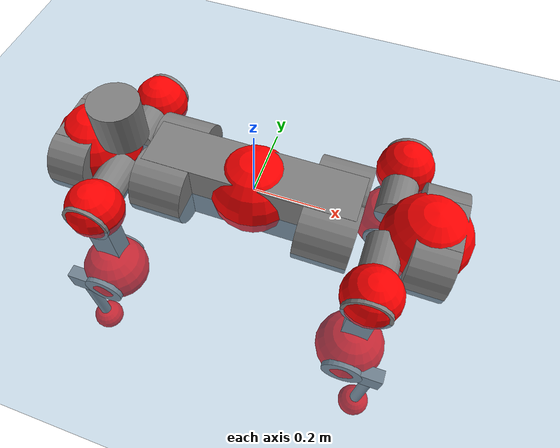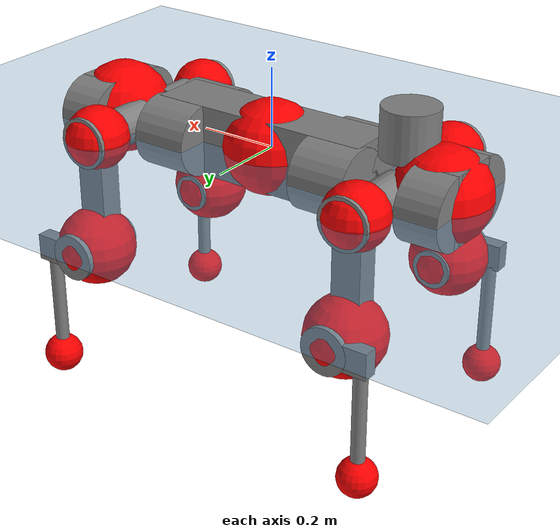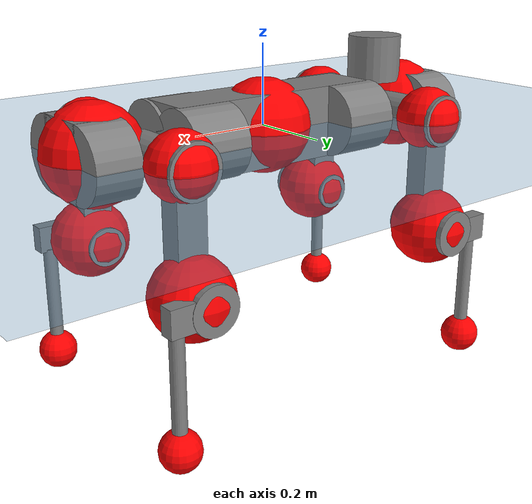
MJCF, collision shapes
<mujoco model="anymal_c">
  <compiler angle="radian" assetdir="assets" balanceinertia="true" inertiafromgeom="false"/>

  <option timestep="0.005" density="1.2" viscosity="2e-05"/>

  <size nkey="1"/>

  <visual>
    <quality shadowsize="8192"/>
    <map shadowclip="0.5"/>
  </visual>

  <default>
    <default class="/">
      <material specular="0" shininess="0.25"/>
      <geom contype="0" conaffinity="0" group="1" solref="-1000 -80"/>
      <site size="0.01 0.005 0.005" group="5"/>
      <general forcelimited="true" forcerange="-80 80" biastype="affine" gainprm="80" biasprm="0 -80 -2"/>
      <default class="anymal_c">
        <joint armature="0.01" damping="0.01" frictionloss="0.1"/>
        <default class="visual">
          <geom type="mesh" group="2"/>
          <default class="visual_zflip"/>
        </default>
        <default class="collision">
          <geom type="cylinder" group="3"/>
          <default class="foot">
            <geom size="0.03 0 0" type="sphere" condim="6" priority="1" friction="0.8 0.02 0.01" solimp="0.015 1 0.03"/>
          </default>
        </default>
      </default>
      <default class="reward_collision_sphere">
        <geom group="5" rgba="1 0 0 1"/>
      </default>
    </default>
  </default>

  <asset>
    <texture type="skybox" colorspace="auto" name="//unnamed_texture_0" builtin="gradient" rgb1="0.95 0.95 0.95" rgb2="0.95 0.95 0.95" width="100" height="600"/>
    <texture type="2d" colorspace="auto" name="texplane" builtin="checker" rgb1="0.345 0.575 0.748" rgb2="0.345 0.575 0.748" markrgb="1 1 1" width="512" height="512"/>
    <texture type="2d" colorspace="linear" name="base" file="base.png"/>
    <texture type="2d" colorspace="linear" name="top_shell" file="top_shell.png"/>
    <texture type="2d" colorspace="linear" name="bottom_shell" file="bottom_shell.png"/>
    <texture type="2d" colorspace="linear" name="remote" file="remote.png"/>
    <texture type="2d" colorspace="linear" name="hatch" file="hatch.png"/>
    <texture type="2d" colorspace="linear" name="handle" file="handle.png"/>
    <texture type="2d" colorspace="linear" name="face" file="face.png"/>
    <texture type="2d" colorspace="linear" name="battery" file="battery.png"/>
    <texture type="2d" colorspace="linear" name="lidar_cage" file="lidar_cage.png"/>
    <texture type="2d" colorspace="linear" name="depth_camera" file="depth_camera.png"/>
    <texture type="2d" colorspace="linear" name="wide_angle_camera" file="wide_angle_camera.png"/>
    <texture type="2d" colorspace="linear" name="lidar" file="lidar.png"/>
    <texture type="2d" colorspace="linear" name="drive" file="drive.png"/>
    <texture type="2d" colorspace="linear" name="hip_l" file="hip_l.png"/>
    <texture type="2d" colorspace="linear" name="shank_l" file="shank_l.png"/>
    <texture type="2d" colorspace="linear" name="foot" file="foot.png"/>
    <texture type="2d" colorspace="linear" name="thigh" file="thigh.png"/>
    <texture type="2d" colorspace="linear" name="shank_r" file="shank_r.png"/>
    <texture type="2d" colorspace="linear" name="hip_r" file="hip_r.png"/>
    <material name="MatPlane" class="/" texture="texplane" texuniform="true" texrepeat="2 2" specular="0.9" shininess="0.5"/>
    <material name="black_plastic" class="/" rgba="0.007 0.007 0.007 1"/>
    <material name="green" class="/" rgba="0.052 0.178 0.033 1"/>
    <material name="red" class="/" rgba="0.178 0.006 0.005 1"/>
    <material name="yellow" class="/" rgba="0.178 0.119 0.006 1"/>
    <material name="lwl" class="/" rgba="0.8 0.8 0.8 1"/>
    <material name="base" class="/" texture="base"/>
    <material name="top_shell" class="/" texture="top_shell"/>
    <material name="bottom_shell" class="/" texture="bottom_shell"/>
    <material name="hip_l" class="/" texture="hip_l"/>
    <material name="thigh" class="/" texture="thigh"/>
    <material name="shank_l" class="/" texture="shank_l"/>
    <material name="foot" class="/" texture="foot"/>
    <material name="hip_r" class="/" texture="hip_r"/>
    <material name="shank" class="/" texture="shank_r"/>
    <material name="hatch" class="/" texture="hatch"/>
    <material name="remote" class="/" texture="remote"/>
    <material name="handle" class="/" texture="handle"/>
    <material name="face" class="/" texture="face"/>
    <material name="depth_camera" class="/" texture="depth_camera"/>
    <material name="wide_angle_camera" class="/" texture="wide_angle_camera"/>
    <material name="battery" class="/" texture="battery"/>
    <material name="lidar_cage" class="/" texture="lidar_cage"/>
    <material name="lidar" class="/" texture="lidar"/>
    <material name="drive" class="/" texture="drive"/>
    <mesh name="base_0" class="/" file="base_0.obj"/>
    <mesh name="base_1" class="/" file="base_1.obj"/>
    <mesh name="base_2" class="/" file="base_2.obj"/>
    <mesh name="base_3" class="/" file="base_3.obj"/>
    <mesh name="base_4" class="/" file="base_4.obj"/>
    <mesh name="base_5" class="/" file="base_5.obj"/>
    <mesh name="top_shell" class="/" file="top_shell.obj"/>
    <mesh name="bottom_shell" class="/" file="bottom_shell.obj"/>
    <mesh name="remote" class="/" file="remote.obj"/>
    <mesh name="handle" class="/" file="handle.obj"/>
    <mesh name="face" class="/" file="face.obj"/>
    <mesh name="wide_angle_camera" class="/" file="wide_angle_camera.obj"/>
    <mesh name="depth_camera" class="/" file="depth_camera.obj"/>
    <mesh name="battery" class="/" file="battery.obj"/>
    <mesh name="lidar_cage" class="/" file="lidar_cage.obj"/>
    <mesh name="lidar" class="/" file="lidar.obj"/>
    <mesh name="drive" class="/" file="drive.obj"/>
    <mesh name="hip_l" class="/" file="hip_l.obj"/>
    <mesh name="thigh" class="/" file="thigh.obj"/>
    <mesh name="shank_l" class="/" file="shank_l.obj"/>
    <mesh name="foot" class="/" file="foot.obj"/>
    <mesh name="hip_r" class="/" file="hip_r.obj"/>
    <mesh name="hatch" class="/" file="hatch.obj"/>
    <mesh name="shank_r" class="/" file="shank_r.obj"/>
  </asset>

  <worldbody>
    <geom name="floor" class="/" size="100 100 0.125" type="plane" group="0" material="MatPlane"/>
    <light name="toplight_shadow" class="/" pos="0 0 5" dir="0.0990148 0.0990148 -0.990148" type="directional" ambient="0.04 0.04 0.04" diffuse="0.55 0.55 0.55" specular="0.12 0.12 0.12"/>
    <light name="toplight_fill" class="/" pos="0 0 5" dir="0.0990148 0.0990148 -0.990148" type="directional" castshadow="false" ambient="0.04 0.04 0.04" diffuse="0.3 0.3 0.3" specular="0.08 0.08 0.08"/>
    <body name="trunk" childclass="anymal_c" pos="7.33938e-05 4.87483e-05 0.000836082" quat="1 -3.62262e-07 1.35097e-06 1.83931e-06">
      <inertial pos="0.00216746 0.000140832 0.0478102" quat="0.499817 0.500188 0.50003 0.499964" mass="18.6758" diaginertia="0.757434 0.464583 0.207195"/>
      <joint name="//unnamed_joint_0" type="free" armature="0" damping="0" frictionloss="0"/>
      <geom name="//unnamed_geom_1" class="visual" material="green" mesh="base_0"/>
      <geom name="//unnamed_geom_2" class="visual" material="yellow" mesh="base_1"/>
      <geom name="//unnamed_geom_3" class="visual" material="red" mesh="base_2"/>
      <geom name="//unnamed_geom_4" class="visual" material="black_plastic" mesh="base_3"/>
      <geom name="//unnamed_geom_5" class="visual" material="lwl" mesh="base_4"/>
      <geom name="//unnamed_geom_6" class="visual" material="base" mesh="base_5"/>
      <geom name="trunk_1" class="collision" size="0.286496 0.0691541 0.0889125" type="box"/>
      <geom name="trunk_2" class="collision" size="0.0889125 0.0716239" pos="0.224767 0.0659329 0" quat="0.707107 0 0.707107 0"/>
      <geom name="trunk_3" class="collision" size="0.0889125 0.0716239" pos="-0.224767 0.0659329 0" quat="0.707107 0 0.707107 0"/>
      <geom name="trunk_4" class="collision" size="0.0889125 0.0716239" pos="0.224767 -0.0659329 0" quat="0.707107 0 0.707107 0"/>
      <geom name="trunk_5" class="collision" size="0.0889125 0.0716239" pos="-0.224767 -0.0659329 0" quat="0.707107 0 0.707107 0"/>
      <geom name="//unnamed_geom_12" class="visual" material="top_shell" mesh="top_shell"/>
      <geom name="//unnamed_geom_13" class="visual" material="bottom_shell" mesh="bottom_shell"/>
      <geom name="//unnamed_geom_14" class="visual" material="remote" mesh="remote"/>
      <geom name="//unnamed_geom_15" class="visual" material="handle" mesh="handle"/>
      <geom name="//unnamed_geom_16" class="visual" pos="0.42835 0 0" quat="1 0 0 0" material="face" mesh="face"/>
      <geom name="trunk_6" class="collision" size="0.0543354 0.0691541 0.0889125" pos="0.485188 0 0" type="box"/>
      <geom name="//unnamed_geom_18" class="collision" size="0.0889125 0.0543354" pos="0.485188 0.0659329 0" quat="0.707107 0 0.707107 0"/>
      <geom name="//unnamed_geom_19" class="collision" size="0.0889125 0.0543354" pos="0.485188 -0.0659329 0" quat="0.707107 0 0.707107 0"/>
      <geom name="//unnamed_geom_20" class="visual" pos="0.477073 0 -0.0285205" quat="0.965926 0 0.258819 0" material="depth_camera" mesh="depth_camera"/>
      <geom name="//unnamed_geom_21" class="visual" pos="0.530141 0 0.0147969" material="wide_angle_camera" mesh="wide_angle_camera"/>
      <geom name="//unnamed_geom_22" class="visual_zflip" pos="-0.42835 0 0" quat="0 0 0 1" material="face" mesh="face"/>
      <geom name="trunk_7" class="collision" size="0.0543354 0.0691541 0.0889125" pos="-0.485188 0 0" quat="0 0 0 1" type="box"/>
      <geom name="//unnamed_geom_24" class="collision" size="0.0889125 0.0543354" pos="-0.485188 -0.0659329 0" quat="0 -0.707107 0 0.707107"/>
      <geom name="//unnamed_geom_25" class="collision" size="0.0889125 0.0543354" pos="-0.485188 0.0659329 0" quat="0 -0.707107 0 0.707107"/>
      <geom name="//unnamed_geom_26" class="visual" pos="-0.477073 0 -0.0285205" quat="0 -0.258819 0 0.965926" material="depth_camera" mesh="depth_camera"/>
      <geom name="//unnamed_geom_27" class="visual_zflip" pos="-0.530141 0 0.0147969" quat="0 0 0 1" material="wide_angle_camera" mesh="wide_angle_camera"/>
      <geom name="//unnamed_geom_28" class="visual" material="battery" mesh="battery"/>
      <geom name="//unnamed_geom_29" class="visual" pos="0 0.0708149 0.0290559" quat="0.683013 -0.183013 0.183013 0.683013" material="depth_camera" mesh="depth_camera"/>
      <geom name="//unnamed_geom_30" class="visual" pos="0 -0.0708149 0.0290559" quat="0.683013 0.183013 0.183013 -0.683013" material="depth_camera" mesh="depth_camera"/>
      <geom name="//unnamed_geom_31" class="visual" pos="-0.376163 0 0.0726501" quat="1 0 0 0" material="lidar_cage" mesh="lidar_cage"/>
      <geom name="trunk_8" class="collision" size="0.0691541 0.059275" pos="-0.376163 0 0.131956"/>
      <geom name="//unnamed_geom_33" class="visual" pos="-0.376162 -3.59535e-05 0.140556" quat="0.707107 0 0 -0.707107" material="lidar" mesh="lidar"/>
      <geom name="//unnamed_geom_34" class="visual" pos="0.309921 0.097974 -8.02769e-10" quat="0.258819 0.965926 0 0" material="drive" mesh="drive"/>
      <geom name="//unnamed_geom_35" class="visual" pos="0.309921 -0.097974 8.02769e-10" quat="0.258819 -0.965926 0 0" material="drive" mesh="drive"/>
      <geom name="//unnamed_geom_36" class="visual" pos="-0.309921 0.097974 8.02769e-10" quat="0 0 0.965926 -0.258819" material="drive" mesh="drive"/>
      <geom name="//unnamed_geom_37" class="visual" pos="-0.309921 -0.097974 -8.02769e-10" quat="0 0 -0.965926 -0.258819" material="drive" mesh="drive"/>
      <geom name="//unnamed_geom_38" class="visual" pos="0.119876 0 0.0721558" quat="1 0 0 0" material="hatch" mesh="hatch"/>
      <geom name="//unnamed_geom_39" class="reward_collision_sphere" size="0.11855"/>
      <geom name="//unnamed_geom_40" class="reward_collision_sphere" size="0.11855" pos="0.465036 0 0"/>
      <geom name="//unnamed_geom_41" class="reward_collision_sphere" size="0.11855" pos="-0.465036 0 0"/>
      <site name="imu" pos="0.257431 0.0118698 0.0452923" size="0.00987916"/>
      <camera name="track" pos="0 -1.8838 0" quat="0.707107 0.707107 0 0" mode="trackcom"/>
      <camera name="ego_camera" pos="0.465036 0 -0.0395374" quat="-0.5 -0.5 0.5 0.5"/>
      <body name="LF_HIP" pos="0.310141 0.0986051 7.42327e-05" quat="0.258882 0.965909 7.11476e-06 -0.0001366">
        <inertial pos="0.0589252 -0.0142493 -0.00733944" quat="-0.128048 0.709631 -0.134428 0.679674" mass="2.65556" diaginertia="0.00687257 0.00366566 0.00305942"/>
        <joint name="LF_HAA" pos="0 0 0" axis="0.999999 0.00103961 0.000967852" stiffness="0.00024286" range="-0.712077 0.491932" armature="0.00946986" damping="0.00648951" frictionloss="0.100928"/>
        <geom name="//unnamed_geom_42" class="visual" pos="0 -4.72233e-05 7.75639e-06" quat="0.258819 -0.965926 0 0" material="hip_l" mesh="hip_l"/>
        <geom name="//unnamed_geom_43" class="visual" pos="0.0619015 -0.0738184 -0.0429633" quat="0.183013 -0.683013 0.683013 0.183013" material="drive" mesh="drive"/>
        <geom name="//unnamed_geom_44" class="collision" size="0.0493958 0.0691541" pos="0.0619015 -0.0112649 -0.00682515" quat="-0.353553 -0.612372 0.612372 -0.353553"/>
        <body name="LF_THIGH" pos="0.0622563 -0.0686884 -0.041866" quat="0.183075 -0.683003 0.682999 0.183036">
          <inertial pos="0.0319364 0.000167604 -0.242004" quat="0.993232 -0.00458361 -0.0802534 0.0838397" mass="2.98236" diaginertia="0.0357896 0.0220132 0.0039255"/>
          <joint name="LF_HFE" pos="0 0 0" axis="1 -0.000165217 0.000332652" stiffness="0.00656538" range="-3.12596 3.1305" armature="0.0101121" damping="0.0079015" frictionloss="0.097917"/>
          <geom name="//unnamed_geom_45" class="visual" pos="0.00182078 2.86912e-06 0" quat="0.707107 0 0 -0.707107" material="thigh" mesh="thigh"/>
          <geom name="//unnamed_geom_46" class="collision" size="0.0642146 0.0395166" pos="0.0413365 0 0" quat="0.5 0.5 -0.5 -0.5"/>
          <geom name="//unnamed_geom_47" class="collision" size="0.0370469 0.0296375 0.139606" pos="0.0310024 0 -0.13968" quat="0.707107 0 0 -0.707107" type="box"/>
          <geom name="//unnamed_geom_48" class="visual" pos="0.103651 0 -0.281704" quat="1 0 0 0" material="drive" mesh="drive"/>
          <geom name="//unnamed_geom_49" class="collision" size="0.0493958 0.0691541" pos="0.0313124 0 -0.281704" quat="0.707107 0 0.707107 0"/>
          <geom name="//unnamed_geom_50" class="reward_collision_sphere" size="0.0790333" pos="0.0258353 0 0"/>
          <body name="LF_SHANK" pos="0.103541 -0.00117514 -0.282662" quat="1 -3.95406e-05 -0.000110311 7.9899e-06">
            <inertial pos="0.00592461 -0.0576197 -0.0797167" quat="0.992947 -0.115869 -0.000996721 -0.0251004" mass="0.572988" diaginertia="0.0119859 0.00686647 0.00106194"/>
            <joint name="LF_KFE" pos="0 0 0" axis="0.999988 -0.00173907 -0.00453701" range="-3.13971 3.13166" armature="0.0099386" damping="0.00642733" frictionloss="0.102878"/>
            <geom name="//unnamed_geom_51" class="visual" pos="0.000593715 0.00316572 0" quat="0.707107 0 0 -0.707107" material="shank_l" mesh="shank_l"/>
            <geom name="LF_kfe_act" class="collision" size="0.059275 0.0197583" pos="0.0206683 0 0" quat="0.5 0.5 -0.5 -0.5"/>
            <geom name="//unnamed_geom_53" class="collision" size="0.0568042 0.0333422 0.0187704" pos="0.0206683 -0.0541583 0" quat="0.5 0.5 -0.5 -0.5" type="box"/>
            <geom name="//unnamed_geom_54" class="visual" pos="0.0134859 -0.0818198 -0.334062" quat="0.382683 0 0 -0.92388" material="foot" mesh="foot"/>
            <geom name="LF_calf" class="collision" size="0.0172885 0.139545" pos="0.013486 -0.08284 -0.167031" quat="0.707107 0 0 -0.707107"/>
            <geom name="LF_foot" class="foot" size="0.0305126" pos="0.013486 -0.08284 -0.311822" quat="0.707107 0 0 -0.707107"/>
            <geom name="//unnamed_geom_57" class="reward_collision_sphere" size="0.0987916" pos="-0.0516707 0 0"/>
            <geom name="//unnamed_geom_58" class="reward_collision_sphere" size="0.0493958" pos="0.013486 -0.08284 -0.311822"/>
            <site name="LF_foot" class="foot" pos="0.013486 -0.08284 -0.311822" quat="0.707107 0 0 -0.707107" size="0.00987916"/>
          </body>
        </body>
      </body>
      <body name="RF_HIP" pos="0.310308 -0.0976614 0.000717893" quat="0.258514 -0.966008 -0.000170803 -0.000113216">
        <inertial pos="0.0587739 0.0151248 -0.00866331" quat="0.135404 0.679055 0.12787 0.710071" mass="2.69341" diaginertia="0.00693927 0.00368097 0.003106"/>
        <joint name="RF_HAA" pos="0 0 0" axis="1 -0.000460431 0.000611719" range="-0.506583 0.720917" armature="0.00979972" damping="0.0119585" frictionloss="0.103239"/>
        <geom name="//unnamed_geom_59" class="visual" pos="0 4.72229e-05 7.75637e-06" quat="0.258819 0.965926 0 0" material="hip_r" mesh="hip_r"/>
        <geom name="//unnamed_geom_60" class="visual" pos="0.0619015 0.0738184 -0.0429633" quat="0.183013 0.683013 0.683013 -0.183013" material="drive" mesh="drive"/>
        <geom name="//unnamed_geom_61" class="collision" size="0.0493958 0.0691541" pos="0.0619015 0.0112649 -0.00682515" quat="-0.353553 0.612372 0.612372 0.353553"/>
        <body name="RF_THIGH" pos="0.0629076 0.0676581 -0.041865" quat="0.183046 0.682992 0.683028 -0.183001">
          <inertial pos="0.0319654 -0.000203159 -0.242632" quat="0.992741 -0.00463469 -0.0810025 0.088785" mass="3.01214" diaginertia="0.0359316 0.0224699 0.00400598"/>
          <joint name="RF_HFE" pos="0 0 0" axis="0.999997 -0.000317599 -0.00229276" stiffness="0.00585023" range="-3.12675 3.13752" armature="0.00996094" damping="0.0103337" frictionloss="0.096365"/>
          <geom name="//unnamed_geom_62" class="visual" pos="0.00182078 2.86912e-06 0" quat="0.707107 0 0 -0.707107" material="thigh" mesh="thigh"/>
          <geom name="//unnamed_geom_63" class="collision" size="0.0642146 0.0395166" pos="0.0413365 0 0" quat="0.5 0.5 0.5 0.5"/>
          <geom name="//unnamed_geom_64" class="collision" size="0.0370469 0.0296375 0.139606" pos="0.0310024 0 -0.13968" quat="0.707107 0 0 0.707107" type="box"/>
          <geom name="//unnamed_geom_65" class="visual" pos="0.103651 0 -0.281704" quat="1 0 0 0" material="drive" mesh="drive"/>
          <geom name="//unnamed_geom_66" class="collision" size="0.0493958 0.0691541" pos="0.0313124 0 -0.281704" quat="0.707107 0 0.707107 0"/>
          <geom name="//unnamed_geom_67" class="reward_collision_sphere" size="0.0790333" pos="0.0258353 0 0"/>
          <body name="RF_SHANK" pos="0.103458 0.000594095 -0.281983" quat="1 0.000145945 8.3103e-05 3.08329e-05">
            <inertial pos="0.00587324 0.0572379 -0.0789374" quat="0.993012 0.115564 -0.00154992 0.0238586" mass="0.559726" diaginertia="0.0118274 0.00682945 0.00105273"/>
            <joint name="RF_KFE" pos="0 0 0" axis="0.999973 0.00729535 -0.001299" stiffness="0.00129302" range="-3.13104 3.14523" armature="0.00997881" damping="0.00917905" frictionloss="0.0948109"/>
            <geom name="//unnamed_geom_68" class="visual" pos="0.000593712 -0.00316572 0" quat="0.707107 0 0 0.707107" material="shank" mesh="shank_r"/>
            <geom name="RF_kfe_act" class="collision" size="0.059275 0.0197583" pos="0.0206683 0 0" quat="0.5 0.5 0.5 0.5"/>
            <geom name="//unnamed_geom_70" class="collision" size="0.0568042 0.0333422 0.0187704" pos="0.0206683 0.0541583 0" quat="0.5 0.5 0.5 0.5" type="box"/>
            <geom name="//unnamed_geom_71" class="visual" pos="0.0134862 0.0818198 -0.334062" quat="0.382683 0 0 0.92388" material="foot" mesh="foot"/>
            <geom name="RF_calf" class="collision" size="0.0172885 0.139545" pos="0.013486 0.08284 -0.167031" quat="0.707107 0 0 0.707107"/>
            <geom name="RF_foot" class="foot" size="0.030018" pos="0.013486 0.08284 -0.311822" quat="0.707107 0 0 0.707107"/>
            <geom name="//unnamed_geom_74" class="reward_collision_sphere" size="0.0987916" pos="-0.0516707 0 0"/>
            <geom name="//unnamed_geom_75" class="reward_collision_sphere" size="0.0493958" pos="0.013486 0.08284 -0.311822"/>
            <site name="RF_foot" class="foot" pos="0.013486 0.08284 -0.311822" quat="0.707107 0 0 0.707107" size="0.00987916"/>
          </body>
        </body>
      </body>
      <body name="LH_HIP" pos="-0.309897 0.0979232 0.000153298" quat="-6.23564e-05 -0.000111635 0.965923 -0.25883">
        <inertial pos="0.0593199 0.0145191 -0.00794618" quat="0.1313 0.68072 0.125221 0.709718" mass="2.64904" diaginertia="0.00691075 0.00360498 0.00312037"/>
        <joint name="LH_HAA" pos="0 0 0" axis="0.999985 -0.00154654 0.00530851" range="-0.483808 0.73338" armature="0.00992597" damping="0.0134223" frictionloss="0.0952967"/>
        <geom name="//unnamed_geom_76" class="visual" pos="0 4.72229e-05 7.75637e-06" quat="-0.258819 -0.965926 0 0" material="hip_r" mesh="hip_r"/>
        <geom name="//unnamed_geom_77" class="visual" pos="0.0619015 0.0738184 -0.0429633" quat="0.183013 0.683013 0.683013 -0.183013" material="drive" mesh="drive"/>
        <geom name="//unnamed_geom_78" class="collision" size="0.0493958 0.0691541" pos="0.0619015 0.0112649 -0.00682515" quat="-0.353553 0.612372 0.612372 0.353553"/>
        <body name="LH_THIGH" pos="0.0612584 0.0692915 -0.0418997" quat="0.182943 0.682875 0.683108 -0.183237">
          <inertial pos="0.0317834 0.000758629 -0.242599" quat="0.992748 -0.00564353 -0.0803254 0.0892603" mass="2.98556" diaginertia="0.0355354 0.0224231 0.00392336"/>
          <joint name="LH_HFE" pos="0 0 0" axis="1 -5.68533e-06 -0.000307776" range="-3.14302 3.13735" armature="0.00993362" damping="0.00615558" frictionloss="0.0987622"/>
          <geom name="//unnamed_geom_79" class="visual" pos="0.00182078 2.86912e-06 0" quat="0.707107 0 0 -0.707107" material="thigh" mesh="thigh"/>
          <geom name="//unnamed_geom_80" class="collision" size="0.0642146 0.0395166" pos="0.0413365 0 0" quat="0.5 0.5 -0.5 -0.5"/>
          <geom name="//unnamed_geom_81" class="collision" size="0.0370469 0.0296375 0.139606" pos="0.0310024 0 -0.13968" quat="0.707107 0 0 -0.707107" type="box"/>
          <geom name="//unnamed_geom_82" class="visual" pos="0.103651 0 -0.281704" quat="1 0 0 0" material="drive" mesh="drive"/>
          <geom name="//unnamed_geom_83" class="collision" size="0.0493958 0.0691541" pos="0.0313124 0 -0.281704" quat="0.707107 0 0.707107 0"/>
          <geom name="//unnamed_geom_84" class="reward_collision_sphere" size="0.0790333" pos="0.0258353 0 0"/>
          <body name="LH_SHANK" pos="0.10343 -0.000389159 -0.282048" quat="1 9.90371e-05 0.000286893 -0.000261879">
            <inertial pos="0.0049794 0.0575746 -0.0788013" quat="0.99295 0.11579 -0.000891301 0.0253551" mass="0.57572" diaginertia="0.0120953 0.00693691 0.00108279"/>
            <joint name="LH_KFE" pos="0 0 0" axis="0.999996 0.00133424 0.00267299" range="-3.14612 3.11948" armature="0.00997351" damping="0.00551792" frictionloss="0.0957744"/>
            <geom name="//unnamed_geom_85" class="visual" pos="0.000593712 -0.00316572 0" quat="-0.707107 0 0 -0.707107" material="shank" mesh="shank_r"/>
            <geom name="LH_kfe_act" class="collision" size="0.059275 0.0197583" pos="0.0206683 0 0" quat="0.5 0.5 -0.5 -0.5"/>
            <geom name="//unnamed_geom_87" class="collision" size="0.0568042 0.0333422 0.0187704" pos="0.0206683 0.0541583 0" quat="0.5 0.5 -0.5 -0.5" type="box"/>
            <geom name="//unnamed_geom_88" class="visual" pos="0.0134862 0.0818198 -0.334062" quat="-0.382683 0 0 -0.92388" material="foot" mesh="foot"/>
            <geom name="LH_calf" class="collision" size="0.0172885 0.139545" pos="0.013486 0.08284 -0.167031" quat="0.707107 0 0 -0.707107"/>
            <geom name="LH_foot" class="foot" size="0.0305127" pos="0.013486 0.08284 -0.311822" quat="0.707107 0 0 -0.707107"/>
            <geom name="//unnamed_geom_91" class="reward_collision_sphere" size="0.0987916" pos="-0.0516707 0 0"/>
            <geom name="//unnamed_geom_92" class="reward_collision_sphere" size="0.0493958" pos="0.013486 0.08284 -0.311822"/>
            <site name="LH_foot" class="foot" pos="0.013486 0.08284 -0.311822" quat="0.707107 0 0 -0.707107" size="0.00987916"/>
          </body>
        </body>
      </body>
      <body name="RH_HIP" pos="-0.309956 -0.0987565 0.000821633" quat="-1.78812e-05 -4.35316e-05 -0.965907 -0.258888">
        <inertial pos="0.0590512 -0.0151145 -0.00787671" quat="-0.125745 0.707793 -0.135231 0.681858" mass="2.69722" diaginertia="0.00690224 0.003717 0.00313832"/>
        <joint name="RH_HAA" pos="0 0 0" axis="1 0.000308363 8.90062e-05" range="-0.717486 0.500825" armature="0.00998209" damping="0.0102628" frictionloss="0.0943824"/>
        <geom name="//unnamed_geom_93" class="visual" pos="0 -4.72233e-05 7.75639e-06" quat="-0.258819 0.965926 0 0" material="hip_l" mesh="hip_l"/>
        <geom name="//unnamed_geom_94" class="visual" pos="0.0619015 -0.0738184 -0.0429633" quat="-0.183013 0.683013 -0.683013 -0.183013" material="drive" mesh="drive"/>
        <geom name="//unnamed_geom_95" class="collision" size="0.0493958 0.0691541" pos="0.0619015 -0.0112649 -0.00682515" quat="0.353553 0.612372 -0.612372 0.353553"/>
        <body name="RH_THIGH" pos="0.0616728 -0.06857 -0.042333" quat="-0.183024 0.683007 -0.683021 -0.182991">
          <inertial pos="0.0320987 0.000809505 -0.243529" quat="0.993045 -0.00608744 -0.0792495 0.0868583" mass="2.93148" diaginertia="0.0353832 0.0218804 0.00391569"/>
          <joint name="RH_HFE" pos="0 0 0" axis="0.999987 0.00493206 0.000947565" range="-3.14714 3.14297" armature="0.0103077" damping="0.00810338" frictionloss="0.100011"/>
          <geom name="//unnamed_geom_96" class="visual" pos="0.00182078 2.86912e-06 0" quat="0.707107 0 0 -0.707107" material="thigh" mesh="thigh"/>
          <geom name="//unnamed_geom_97" class="collision" size="0.0642146 0.0395166" pos="0.0413365 0 0" quat="0.5 0.5 0.5 0.5"/>
          <geom name="//unnamed_geom_98" class="collision" size="0.0370469 0.0296375 0.139606" pos="0.0310024 0 -0.13968" quat="0.707107 0 0 0.707107" type="box"/>
          <geom name="//unnamed_geom_99" class="visual" pos="0.103651 0 -0.281704" quat="1 0 0 0" material="drive" mesh="drive"/>
          <geom name="//unnamed_geom_100" class="collision" size="0.0493958 0.0691541" pos="0.0313124 0 -0.281704" quat="0.707107 0 0.707107 0"/>
          <geom name="//unnamed_geom_101" class="reward_collision_sphere" size="0.0790333" pos="0.0258353 0 0"/>
          <body name="RH_SHANK" pos="0.103968 0.00109284 -0.281772" quat="1 -0.00015208 -0.000282861 8.6723e-05">
            <inertial pos="0.00504733 -0.0577162 -0.0796961" quat="0.993114 -0.114693 -0.000416641 -0.0238537" mass="0.572243" diaginertia="0.0121459 0.00688299 0.0010769"/>
            <joint name="RH_KFE" pos="0 0 0" axis="0.999988 -0.0009214 -0.00476595" range="-3.13578 3.13204" armature="0.00997506" damping="0.00868439" frictionloss="0.0998361"/>
            <geom name="//unnamed_geom_102" class="visual" pos="0.000593715 0.00316572 0" quat="0.707107 0 0 -0.707107" material="shank_l" mesh="shank_l"/>
            <geom name="RH_kfe_act" class="collision" size="0.059275 0.0197583" pos="0.0206683 0 0" quat="0.5 0.5 0.5 0.5"/>
            <geom name="//unnamed_geom_104" class="collision" size="0.0568042 0.0333422 0.0187704" pos="0.0206683 -0.0541583 0" quat="0.5 0.5 0.5 0.5" type="box"/>
            <geom name="//unnamed_geom_105" class="visual" pos="0.0134859 -0.0818198 -0.334062" quat="0.382683 0 0 -0.92388" material="foot" mesh="foot"/>
            <geom name="RH_calf" class="collision" size="0.0172885 0.139545" pos="0.013486 -0.08284 -0.167031" quat="0.707107 0 0 0.707107"/>
            <geom name="RH_foot" class="foot" size="0.0264786" pos="0.013486 -0.08284 -0.311822" quat="0.707107 0 0 0.707107"/>
            <geom name="//unnamed_geom_108" class="reward_collision_sphere" size="0.0987916" pos="-0.0516707 0 0"/>
            <geom name="//unnamed_geom_109" class="reward_collision_sphere" size="0.0493958" pos="0.013486 -0.08284 -0.311822"/>
            <site name="RH_foot" class="foot" pos="0.013486 -0.08284 -0.311822" quat="0.707107 0 0 0.707107" size="0.00987916"/>
          </body>
        </body>
      </body>
    </body>
  </worldbody>

  <contact>
    <pair class="/" geom1="floor" geom2="LF_foot" name="//unnamed_contact_0"/>
    <pair class="/" geom1="floor" geom2="RF_foot" name="//unnamed_contact_1"/>
    <pair class="/" geom1="floor" geom2="LH_foot" name="//unnamed_contact_2"/>
    <pair class="/" geom1="floor" geom2="RH_foot" name="//unnamed_contact_3"/>
  </contact>

  <actuator>
    <general name="LF_HAA" class="/" joint="LF_HAA" forcerange="-81.9115 81.9115" gainprm="79.6321" biasprm="0 -79.6321 -1.90506"/>
    <general name="LF_HFE" class="/" joint="LF_HFE" forcerange="-76.8976 76.8976" gainprm="79.6321" biasprm="0 -79.6321 -1.90506"/>
    <general name="LF_KFE" class="/" joint="LF_KFE" forcerange="-80.5624 80.5624" gainprm="79.6321" biasprm="0 -79.6321 -1.90506"/>
    <general name="RF_HAA" class="/" joint="RF_HAA" forcerange="-78.4214 78.4214" gainprm="79.6321" biasprm="0 -79.6321 -1.90506"/>
    <general name="RF_HFE" class="/" joint="RF_HFE" forcerange="-79.2109 79.2109" gainprm="79.6321" biasprm="0 -79.6321 -1.90506"/>
    <general name="RF_KFE" class="/" joint="RF_KFE" forcerange="-80.5084 80.5084" gainprm="79.6321" biasprm="0 -79.6321 -1.90506"/>
    <general name="LH_HAA" class="/" joint="LH_HAA" forcerange="-76.8447 76.8447" gainprm="79.6321" biasprm="0 -79.6321 -1.90506"/>
    <general name="LH_HFE" class="/" joint="LH_HFE" forcerange="-79.2368 79.2368" gainprm="79.6321" biasprm="0 -79.6321 -1.90506"/>
    <general name="LH_KFE" class="/" joint="LH_KFE" forcerange="-81.4941 81.4941" gainprm="79.6321" biasprm="0 -79.6321 -1.90506"/>
    <general name="RH_HAA" class="/" joint="RH_HAA" forcerange="-77.6406 77.6406" gainprm="79.6321" biasprm="0 -79.6321 -1.90506"/>
    <general name="RH_HFE" class="/" joint="RH_HFE" forcerange="-78.4999 78.4999" gainprm="79.6321" biasprm="0 -79.6321 -1.90506"/>
    <general name="RH_KFE" class="/" joint="RH_KFE" forcerange="-77.769 77.769" gainprm="79.6321" biasprm="0 -79.6321 -1.90506"/>
  </actuator>

  <sensor>
    <gyro site="imu" name="imu_angular_velocity"/>
    <velocimeter site="imu" name="imu_linear_velocity"/>
    <framelinvel objtype="site" objname="LF_foot" name="LF_foot_global_linear_velocity"/>
    <framelinvel objtype="site" objname="RF_foot" name="RF_foot_global_linear_velocity"/>
    <framelinvel objtype="site" objname="LH_foot" name="LH_foot_global_linear_velocity"/>
    <framelinvel objtype="site" objname="RH_foot" name="RH_foot_global_linear_velocity"/>
  </sensor>

  <keyframe>
    <key name="home" qpos="0 0 0.55 1 0 0 0 0 0.4 -0.8 0 -0.4 0.8 0 -0.4 0.8 0 0.4 -0.8"/>
  </keyframe>
</mujoco>
